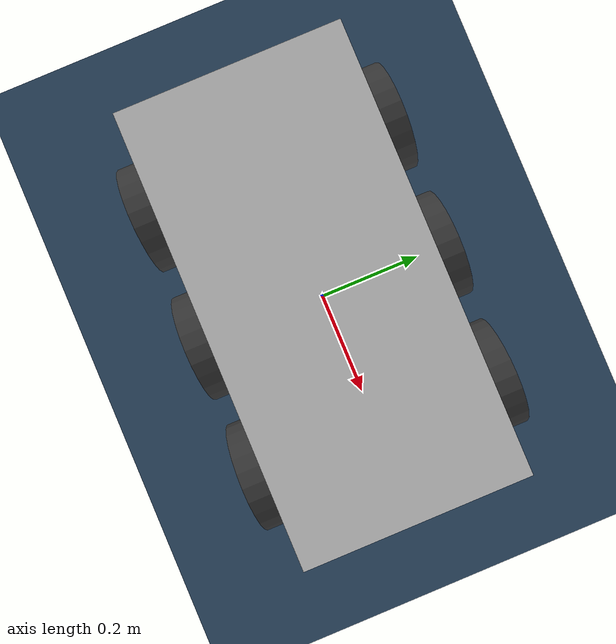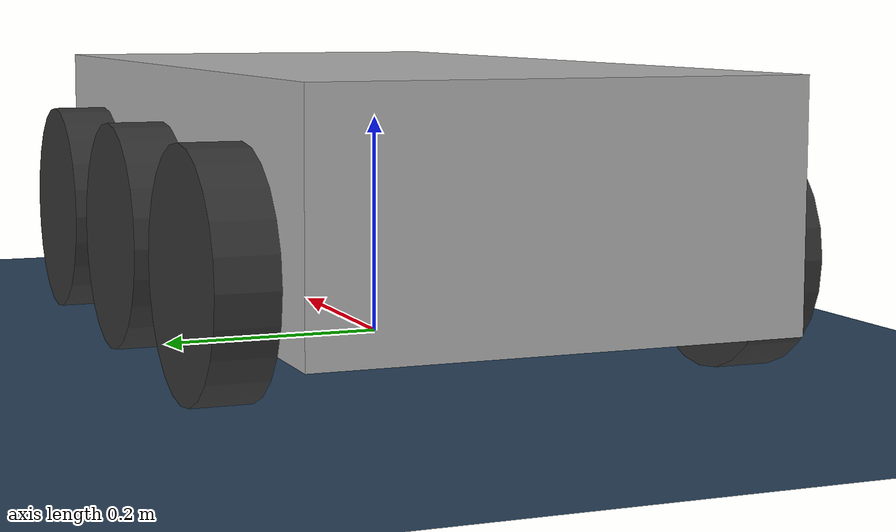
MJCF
<mujoco model="six_wheel_rover">
  <compiler angle="radian" />

  <option gravity="0 0 -9.81" timestep="0.001"/>

  <visual>
    <headlight ambient="0.5 0.5 0.5" />
  </visual>

  <asset>
    <texture name="grid" type="2d" builtin="checker" width="512" height="512" rgb1=".1 .2 .3" rgb2=".2 .3 .4"/>
    <material name="grid" texture="grid" texrepeat="1 1" texuniform="true" reflectance=".2"/>
  </asset>

  <worldbody>
    <!-- Ground plane -->
    <geom name="floor" type="plane" size="10 10 0.1" material="grid" condim="3" friction="1 0.005 0.0001"/>

    <light pos="0 0 3" dir="0 0 -1" diffuse="1 1 1"/>

    <!-- Rover Base -->
    <body name="base_link" pos="0 0 0.15">
      <freejoint/>

      <!-- Chassis -->
      <geom name="chassis" type="box" size="0.4 0.2 0.1" rgba="0.7 0.7 0.7 1" mass="5"/>

      <!-- Inertial properties -->
      <inertial pos="0 0 0" mass="5" diaginertia="0.1 0.1 0.1"/>

      <!-- Front Left Wheel -->
      <body name="front_left_wheel" pos="0.25 0.225 -0.05">
        <joint name="front_left_joint" type="hinge" axis="0 1 0" damping="0.1" armature="0.02"/>
        <geom name="fl_wheel" type="cylinder" size="0.1 0.025" rgba="0.2 0.2 0.2 1" mass="0.5" friction="1 0.005 0.0001" euler="1.5708 0 0"/>
        <inertial pos="0 0 0" mass="0.5" diaginertia="0.005 0.005 0.005"/>
      </body>

      <!-- Front Right Wheel -->
      <body name="front_right_wheel" pos="0.25 -0.225 -0.05">
        <joint name="front_right_joint" type="hinge" axis="0 1 0" damping="0.1" armature="0.02"/>
        <geom name="fr_wheel" type="cylinder" size="0.1 0.025" rgba="0.2 0.2 0.2 1" mass="0.5" friction="1 0.005 0.0001" euler="1.5708 0 0"/>
        <inertial pos="0 0 0" mass="0.5" diaginertia="0.005 0.005 0.005"/>
      </body>

      <!-- Middle Left Wheel -->
      <body name="middle_left_wheel" pos="0.0 0.225 -0.05">
        <joint name="middle_left_joint" type="hinge" axis="0 1 0" damping="0.1" armature="0.02"/>
        <geom name="ml_wheel" type="cylinder" size="0.1 0.025" rgba="0.2 0.2 0.2 1" mass="0.5" friction="1 0.005 0.0001" euler="1.5708 0 0"/>
        <inertial pos="0 0 0" mass="0.5" diaginertia="0.005 0.005 0.005"/>
      </body>

      <!-- Middle Right Wheel -->
      <body name="middle_right_wheel" pos="0.0 -0.225 -0.05">
        <joint name="middle_right_joint" type="hinge" axis="0 1 0" damping="0.1" armature="0.02"/>
        <geom name="mr_wheel" type="cylinder" size="0.1 0.025" rgba="0.2 0.2 0.2 1" mass="0.5" friction="1 0.005 0.0001" euler="1.5708 0 0"/>
        <inertial pos="0 0 0" mass="0.5" diaginertia="0.005 0.005 0.005"/>
      </body>

      <!-- Rear Left Wheel -->
      <body name="rear_left_wheel" pos="-0.25 0.225 -0.05">
        <joint name="rear_left_joint" type="hinge" axis="0 1 0" damping="0.1" armature="0.02"/>
        <geom name="rl_wheel" type="cylinder" size="0.1 0.025" rgba="0.2 0.2 0.2 1" mass="0.5" friction="1 0.005 0.0001" euler="1.5708 0 0"/>
        <inertial pos="0 0 0" mass="0.5" diaginertia="0.005 0.005 0.005"/>
      </body>

      <!-- Rear Right Wheel -->
      <body name="rear_right_wheel" pos="-0.25 -0.225 -0.05">
        <joint name="rear_right_joint" type="hinge" axis="0 1 0" damping="0.1" armature="0.02"/>
        <geom name="rr_wheel" type="cylinder" size="0.1 0.025" rgba="0.2 0.2 0.2 1" mass="0.5" friction="1 0.005 0.0001" euler="1.5708 0 0"/>
        <inertial pos="0 0 0" mass="0.5" diaginertia="0.005 0.005 0.005"/>
      </body>
    </body>
  </worldbody>

  <actuator>
    <!-- Velocity actuators for each wheel -->
    <velocity name="fl_motor" joint="front_left_joint" kv="10"/>
    <velocity name="fr_motor" joint="front_right_joint" kv="10"/>
    <velocity name="ml_motor" joint="middle_left_joint" kv="10"/>
    <velocity name="mr_motor" joint="middle_right_joint" kv="10"/>
    <velocity name="rl_motor" joint="rear_left_joint" kv="10"/>
    <velocity name="rr_motor" joint="rear_right_joint" kv="10"/>
  </actuator>
</mujoco>
